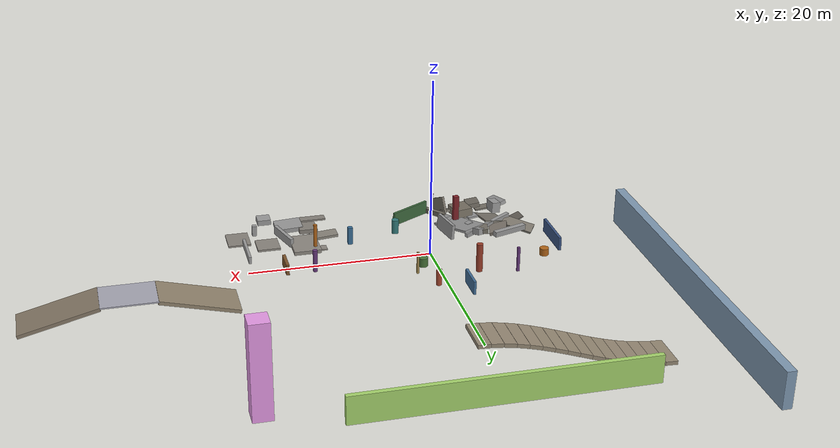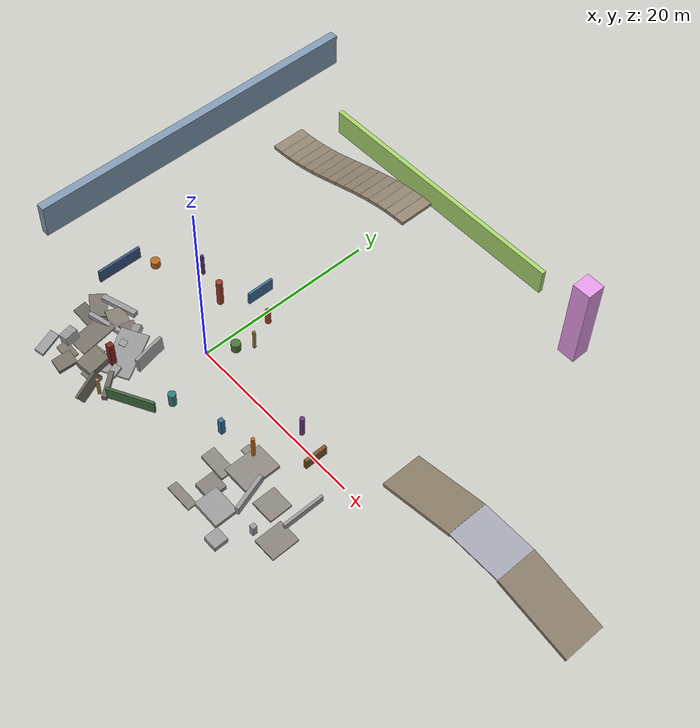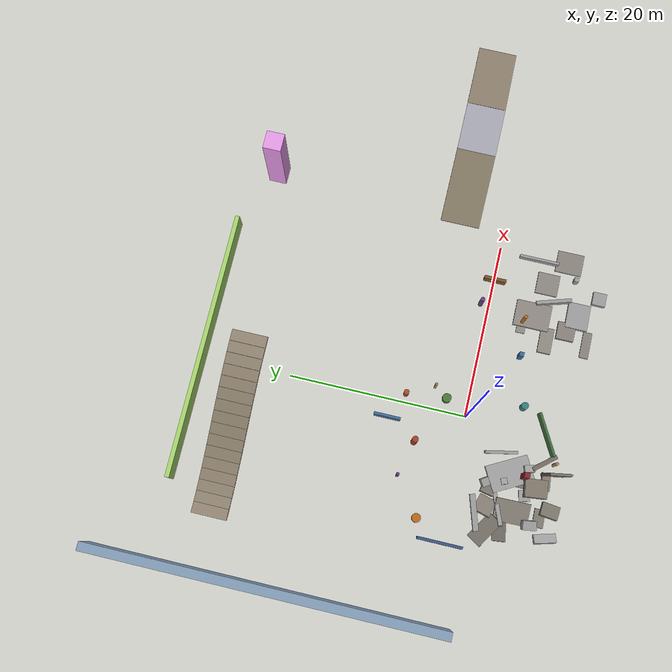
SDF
<sdf version="1.5">
 <world name="complex_terrain_v6">
  <model name="ruins_zone">
   <static>true</static>
   <link name="ruins_link">
    <visual name="r01_v">
     <pose>-5.0 -6.0 0.18 0.15 0.0 0.5</pose>
     <geometry><box><size>3.0 5.0 0.28</size></box></geometry>
     <material>
      <script><uri>file://media/materials/scripts/gazebo.material</uri><name>Gazebo/Grey</name></script>
      <ambient>0.50 0.48 0.45 1</ambient>
     </material>
    </visual>
    <collision name="r01_c">
     <pose>-5.0 -6.0 0.18 0.15 0.0 0.5</pose>
     <geometry><box><size>3.0 5.0 0.28</size></box></geometry>
    </collision>
    <visual name="r02_v">
     <pose>-3.0 -4.5 0.85 0.0 -0.08 0.2</pose>
     <geometry><box><size>0.35 3.5 1.70</size></box></geometry>
     <material>
      <script><uri>file://media/materials/scripts/gazebo.material</uri><name>Gazebo/Grey</name></script>
      <ambient>0.45 0.43 0.42 1</ambient>
     </material>
    </visual>
    <collision name="r02_c">
     <pose>-3.0 -4.5 0.85 0.0 -0.08 0.2</pose>
     <geometry><box><size>0.35 3.5 1.70</size></box></geometry>
    </collision>
    <visual name="r03_v">
     <pose>-8.0 -5.0 0.25 0.0 0.18 0.35</pose>
     <geometry><box><size>6.0 0.45 0.50</size></box></geometry>
     <material>
      <script><uri>file://media/materials/scripts/gazebo.material</uri><name>Gazebo/Grey</name></script>
      <ambient>0.42 0.40 0.38 1</ambient>
     </material>
    </visual>
    <collision name="r03_c">
     <pose>-8.0 -5.0 0.25 0.0 0.18 0.35</pose>
     <geometry><box><size>6.0 0.45 0.50</size></box></geometry>
    </collision>
    <visual name="r04_v">
     <pose>-6.0 -9.0 0.48 0.08 0.05 0.12</pose>
     <geometry><box><size>2.0 2.5 0.95</size></box></geometry>
     <material>
      <script><uri>file://media/materials/scripts/gazebo.material</uri><name>Gazebo/Grey</name></script>
      <ambient>0.48 0.45 0.40 1</ambient>
     </material>
    </visual>
    <collision name="r04_c">
     <pose>-6.0 -9.0 0.48 0.08 0.05 0.12</pose>
     <geometry><box><size>2.0 2.5 0.95</size></box></geometry>
    </collision>
    <visual name="r05_v">
     <pose>-4.0 -8.0 0.20 0.20 0.10 0.30</pose>
     <geometry><box><size>0.80 1.20 0.40</size></box></geometry>
     <material>
      <script><uri>file://media/materials/scripts/gazebo.material</uri><name>Gazebo/Grey</name></script>
      <ambient>0.44 0.42 0.40 1</ambient>
     </material>
    </visual>
    <collision name="r05_c">
     <pose>-4.0 -8.0 0.20 0.20 0.10 0.30</pose>
     <geometry><box><size>0.80 1.20 0.40</size></box></geometry>
    </collision>
    <visual name="r06_v">
     <pose>-9.0 -7.0 0.09 0.20 -0.15 0.0</pose>
     <geometry><box><size>2.5 4.0 0.18</size></box></geometry>
     <material>
      <script><uri>file://media/materials/scripts/gazebo.material</uri><name>Gazebo/Grey</name></script>
      <ambient>0.50 0.48 0.44 1</ambient>
     </material>
    </visual>
    <collision name="r06_c">
     <pose>-9.0 -7.0 0.09 0.20 -0.15 0.0</pose>
     <geometry><box><size>2.5 4.0 0.18</size></box></geometry>
    </collision>
    <visual name="r07_v">
     <pose>-7.0 -4.0 0.28 0.0 0.10 -0.20</pose>
     <geometry><box><size>1.5 1.5 0.55</size></box></geometry>
     <material>
      <script><uri>file://media/materials/scripts/gazebo.material</uri><name>Gazebo/Grey</name></script>
      <ambient>0.46 0.44 0.40 1</ambient>
     </material>
    </visual>
    <collision name="r07_c">
     <pose>-7.0 -4.0 0.28 0.0 0.10 -0.20</pose>
     <geometry><box><size>1.5 1.5 0.55</size></box></geometry>
    </collision>
    <visual name="r08_v">
     <pose>-10.0 -9.0 0.60 0.05 -0.10 0.15</pose>
     <geometry><box><size>1.0 1.5 1.20</size></box></geometry>
     <material>
      <script><uri>file://media/materials/scripts/gazebo.material</uri><name>Gazebo/Grey</name></script>
      <ambient>0.43 0.41 0.38 1</ambient>
     </material>
    </visual>
    <collision name="r08_c">
     <pose>-10.0 -9.0 0.60 0.05 -0.10 0.15</pose>
     <geometry><box><size>1.0 1.5 1.20</size></box></geometry>
    </collision>
    <visual name="r09_v">
     <pose>-5.0 -10.0 0.14 0.30 0.0 0.10</pose>
     <geometry><box><size>2.0 1.0 0.28</size></box></geometry>
     <material>
      <script><uri>file://media/materials/scripts/gazebo.material</uri><name>Gazebo/Grey</name></script>
      <ambient>0.48 0.46 0.42 1</ambient>
     </material>
    </visual>
    <collision name="r09_c">
     <pose>-5.0 -10.0 0.14 0.30 0.0 0.10</pose>
     <geometry><box><size>2.0 1.0 0.28</size></box></geometry>
    </collision>
    <visual name="r10_v">
     <pose>-11.0 -6.0 0.05 0.0 0.35 0.10</pose>
     <geometry><box><size>3.0 1.5 0.10</size></box></geometry>
     <material>
      <script><uri>file://media/materials/scripts/gazebo.material</uri><name>Gazebo/Grey</name></script>
      <ambient>0.40 0.38 0.35 1</ambient>
     </material>
    </visual>
    <collision name="r10_c">
     <pose>-11.0 -6.0 0.05 0.0 0.35 0.10</pose>
     <geometry><box><size>3.0 1.5 0.10</size></box></geometry>
    </collision>
    <visual name="r11_v">
     <pose>-8.0 -11.0 0.25 0.10 0.15 -0.10</pose>
     <geometry><box><size>1.5 2.0 0.50</size></box></geometry>
     <material>
      <script><uri>file://media/materials/scripts/gazebo.material</uri><name>Gazebo/Grey</name></script>
      <ambient>0.46 0.44 0.40 1</ambient>
     </material>
    </visual>
    <collision name="r11_c">
     <pose>-8.0 -11.0 0.25 0.10 0.15 -0.10</pose>
     <geometry><box><size>1.5 2.0 0.50</size></box></geometry>
    </collision>
    <visual name="r12_v">
     <pose>-4.0 -11.0 0.40 0.45 0.0 0.20</pose>
     <geometry><box><size>0.28 3.0 1.80</size></box></geometry>
     <material>
      <script><uri>file://media/materials/scripts/gazebo.material</uri><name>Gazebo/Grey</name></script>
      <ambient>0.44 0.42 0.38 1</ambient>
     </material>
    </visual>
    <collision name="r12_c">
     <pose>-4.0 -11.0 0.40 0.45 0.0 0.20</pose>
     <geometry><box><size>0.28 3.0 1.80</size></box></geometry>
    </collision>
    <visual name="r13_v">
     <pose>-6.0 -5.5 0.28 0.10 0.20 0.40</pose>
     <geometry><box><size>0.70 0.70 0.55</size></box></geometry>
     <material>
      <script><uri>file://media/materials/scripts/gazebo.material</uri><name>Gazebo/Grey</name></script>
      <ambient>0.42 0.41 0.38 1</ambient>
     </material>
    </visual>
    <collision name="r13_c">
     <pose>-6.0 -5.5 0.28 0.10 0.20 0.40</pose>
     <geometry><box><size>0.70 0.70 0.55</size></box></geometry>
    </collision>
    <visual name="r14_v">
     <pose>-9.0 -4.0 0.18 -0.10 0.28 -0.30</pose>
     <geometry><box><size>2.0 2.0 0.35</size></box></geometry>
     <material>
      <script><uri>file://media/materials/scripts/gazebo.material</uri><name>Gazebo/Grey</name></script>
      <ambient>0.50 0.47 0.43 1</ambient>
     </material>
    </visual>
    <collision name="r14_c">
     <pose>-9.0 -4.0 0.18 -0.10 0.28 -0.30</pose>
     <geometry><box><size>2.0 2.0 0.35</size></box></geometry>
    </collision>
    <visual name="r15_v">
     <pose>-5.5 -7.0 0.07 0.0 0.0 0.0</pose>
     <geometry><box><size>1.5 1.5 0.14</size></box></geometry>
     <material>
      <script><uri>file://media/materials/scripts/gazebo.material</uri><name>Gazebo/Grey</name></script>
      <ambient>0.46 0.44 0.40 1</ambient>
     </material>
    </visual>
    <collision name="r15_c">
     <pose>-5.5 -7.0 0.07 0.0 0.0 0.0</pose>
     <geometry><box><size>1.5 1.5 0.14</size></box></geometry>
    </collision>
    <visual name="r16_v">
     <pose>-7.0 -8.0 0.11 0.05 0.05 0.2</pose>
     <geometry><box><size>1.2 1.2 0.22</size></box></geometry>
     <material>
      <script><uri>file://media/materials/scripts/gazebo.material</uri><name>Gazebo/Grey</name></script>
      <ambient>0.45 0.43 0.40 1</ambient>
     </material>
    </visual>
    <collision name="r16_c">
     <pose>-7.0 -8.0 0.11 0.05 0.05 0.2</pose>
     <geometry><box><size>1.2 1.2 0.22</size></box></geometry>
    </collision>
    <visual name="r17_v">
     <pose>-9.0 -10.0 0.09 0.05 0.10 0.0</pose>
     <geometry><box><size>2.0 1.2 0.18</size></box></geometry>
     <material>
      <script><uri>file://media/materials/scripts/gazebo.material</uri><name>Gazebo/Grey</name></script>
      <ambient>0.47 0.45 0.41 1</ambient>
     </material>
    </visual>
    <collision name="r17_c">
     <pose>-9.0 -10.0 0.09 0.05 0.10 0.0</pose>
     <geometry><box><size>2.0 1.2 0.18</size></box></geometry>
    </collision>
    <visual name="r18_v">
     <pose>-11.0 -11.0 0.22 0.15 0.20 0.30</pose>
     <geometry><box><size>1.0 2.5 0.44</size></box></geometry>
     <material>
      <script><uri>file://media/materials/scripts/gazebo.material</uri><name>Gazebo/Grey</name></script>
      <ambient>0.44 0.42 0.39 1</ambient>
     </material>
    </visual>
    <collision name="r18_c">
     <pose>-11.0 -11.0 0.22 0.15 0.20 0.30</pose>
     <geometry><box><size>1.0 2.5 0.44</size></box></geometry>
    </collision>
    <visual name="r19_v">
     <pose>-3.0 -9.5 0.28 0.0 0.0 0.70</pose>
     <geometry><box><size>0.50 3.0 0.55</size></box></geometry>
     <material>
      <script><uri>file://media/materials/scripts/gazebo.material</uri><name>Gazebo/Grey</name></script>
      <ambient>0.43 0.41 0.37 1</ambient>
     </material>
    </visual>
    <collision name="r19_c">
     <pose>-3.0 -9.5 0.28 0.0 0.0 0.70</pose>
     <geometry><box><size>0.50 3.0 0.55</size></box></geometry>
    </collision>
    <visual name="r20_v">
     <pose>-10.0 -3.0 0.30 0.0 1.5708 0.30</pose>
     <geometry><box><size>0.60 0.60 4.0</size></box></geometry>
     <material>
      <script><uri>file://media/materials/scripts/gazebo.material</uri><name>Gazebo/Grey</name></script>
      <ambient>0.42 0.40 0.38 1</ambient>
     </material>
    </visual>
    <collision name="r20_c">
     <pose>-10.0 -3.0 0.30 0.0 1.5708 0.30</pose>
     <geometry><box><size>0.60 0.60 4.0</size></box></geometry>
    </collision>
    <visual name="r21_v">
     <pose>-6.5 -3.5 0.35 0.12 -0.18 0.55</pose>
     <geometry><box><size>0.90 0.90 0.70</size></box></geometry>
     <material>
      <script><uri>file://media/materials/scripts/gazebo.material</uri><name>Gazebo/Grey</name></script>
      <ambient>0.45 0.43 0.40 1</ambient>
     </material>
    </visual>
    <collision name="r21_c">
     <pose>-6.5 -3.5 0.35 0.12 -0.18 0.55</pose>
     <geometry><box><size>0.90 0.90 0.70</size></box></geometry>
    </collision>
    <visual name="r22_v">
     <pose>-11.5 -4.5 0.12 -0.20 0.10 1.0</pose>
     <geometry><box><size>1.80 3.50 0.22</size></box></geometry>
     <material>
      <script><uri>file://media/materials/scripts/gazebo.material</uri><name>Gazebo/Grey</name></script>
      <ambient>0.48 0.46 0.42 1</ambient>
     </material>
    </visual>
    <collision name="r22_c">
     <pose>-11.5 -4.5 0.12 -0.20 0.10 1.0</pose>
     <geometry><box><size>1.80 3.50 0.22</size></box></geometry>
    </collision>
   </link>
  </model>
  <model name="easy_ruins_zone">
   <static>true</static>
   <link name="easy_link">
    <visual name="e01_v">
     <pose>13.0 -5.0 0.20 0 0 0</pose>
     <geometry><box><size>3.0 4.0 0.40</size></box></geometry>
     <material>
      <script><uri>file://media/materials/scripts/gazebo.material</uri><name>Gazebo/Grey</name></script>
      <ambient>0.55 0.53 0.50 1</ambient>
     </material>
    </visual>
    <collision name="e01_c">
     <pose>13.0 -5.0 0.20 0 0 0</pose>
     <geometry><box><size>3.0 4.0 0.40</size></box></geometry>
    </collision>
    <visual name="e02_v">
     <pose>15.0 -7.0 0.50 0 0 0.30</pose>
     <geometry><box><size>0.40 4.0 1.00</size></box></geometry>
     <material>
      <script><uri>file://media/materials/scripts/gazebo.material</uri><name>Gazebo/Grey</name></script>
      <ambient>0.50 0.48 0.46 1</ambient>
     </material>
    </visual>
    <collision name="e02_c">
     <pose>15.0 -7.0 0.50 0 0 0.30</pose>
     <geometry><box><size>0.40 4.0 1.00</size></box></geometry>
    </collision>
    <visual name="e03_v">
     <pose>12.0 -9.0 0.25 0 0 0</pose>
     <geometry><box><size>2.0 2.0 0.50</size></box></geometry>
     <material>
      <script><uri>file://media/materials/scripts/gazebo.material</uri><name>Gazebo/Grey</name></script>
      <ambient>0.52 0.50 0.47 1</ambient>
     </material>
    </visual>
    <collision name="e03_c">
     <pose>12.0 -9.0 0.25 0 0 0</pose>
     <geometry><box><size>2.0 2.0 0.50</size></box></geometry>
    </collision>
    <visual name="e04_v">
     <pose>17.0 -6.0 0.12 0 0 0</pose>
     <geometry><box><size>2.5 2.5 0.24</size></box></geometry>
     <material>
      <script><uri>file://media/materials/scripts/gazebo.material</uri><name>Gazebo/Grey</name></script>
      <ambient>0.54 0.52 0.49 1</ambient>
     </material>
    </visual>
    <collision name="e04_c">
     <pose>17.0 -6.0 0.12 0 0 0</pose>
     <geometry><box><size>2.5 2.5 0.24</size></box></geometry>
    </collision>
    <visual name="e05_v">
     <pose>14.0 -10.0 0.25 0 0.05 0</pose>
     <geometry><box><size>3.0 2.5 0.50</size></box></geometry>
     <material>
      <script><uri>file://media/materials/scripts/gazebo.material</uri><name>Gazebo/Grey</name></script>
      <ambient>0.50 0.49 0.46 1</ambient>
     </material>
    </visual>
    <collision name="e05_c">
     <pose>14.0 -10.0 0.25 0 0.05 0</pose>
     <geometry><box><size>3.0 2.5 0.50</size></box></geometry>
    </collision>
    <visual name="e06_v">
     <pose>11.0 -11.5 0.10 0 0 0</pose>
     <geometry><box><size>3.0 1.0 0.20</size></box></geometry>
     <material>
      <script><uri>file://media/materials/scripts/gazebo.material</uri><name>Gazebo/Grey</name></script>
      <ambient>0.52 0.50 0.47 1</ambient>
     </material>
    </visual>
    <collision name="e06_c">
     <pose>11.0 -11.5 0.10 0 0 0</pose>
     <geometry><box><size>3.0 1.0 0.20</size></box></geometry>
    </collision>
    <visual name="e07_v">
     <pose>18.0 -9.0 0.60 0 0 0</pose>
     <geometry><box><size>0.50 0.50 1.20</size></box></geometry>
     <material>
      <script><uri>file://media/materials/scripts/gazebo.material</uri><name>Gazebo/Grey</name></script>
      <ambient>0.48 0.46 0.43 1</ambient>
     </material>
    </visual>
    <collision name="e07_c">
     <pose>18.0 -9.0 0.60 0 0 0</pose>
     <geometry><box><size>0.50 0.50 1.20</size></box></geometry>
    </collision>
    <visual name="e08_v">
     <pose>10.5 -7.0 0.15 0 0.08 0</pose>
     <geometry><box><size>3.0 1.5 0.30</size></box></geometry>
     <material>
      <script><uri>file://media/materials/scripts/gazebo.material</uri><name>Gazebo/Grey</name></script>
      <ambient>0.54 0.52 0.48 1</ambient>
     </material>
    </visual>
    <collision name="e08_c">
     <pose>10.5 -7.0 0.15 0 0.08 0</pose>
     <geometry><box><size>3.0 1.5 0.30</size></box></geometry>
    </collision>
    <visual name="e09_v">
     <pose>20.0 -8.0 0.10 0 0 0</pose>
     <geometry><box><size>2.5 3.0 0.20</size></box></geometry>
     <material>
      <script><uri>file://media/materials/scripts/gazebo.material</uri><name>Gazebo/Grey</name></script>
      <ambient>0.53 0.51 0.48 1</ambient>
     </material>
    </visual>
    <collision name="e09_c">
     <pose>20.0 -8.0 0.10 0 0 0</pose>
     <geometry><box><size>2.5 3.0 0.20</size></box></geometry>
    </collision>
    <visual name="e10_v">
     <pose>19.5 -4.5 0.40 0 0 0</pose>
     <geometry><box><size>0.30 4.5 0.80</size></box></geometry>
     <material>
      <script><uri>file://media/materials/scripts/gazebo.material</uri><name>Gazebo/Grey</name></script>
      <ambient>0.50 0.48 0.45 1</ambient>
     </material>
    </visual>
    <collision name="e10_c">
     <pose>19.5 -4.5 0.40 0 0 0</pose>
     <geometry><box><size>0.30 4.5 0.80</size></box></geometry>
    </collision>
    <visual name="e11_v">
     <pose>16.5 -12.0 0.30 0 0 0</pose>
     <geometry><box><size>1.5 1.5 0.60</size></box></geometry>
     <material>
      <script><uri>file://media/materials/scripts/gazebo.material</uri><name>Gazebo/Grey</name></script>
      <ambient>0.51 0.49 0.46 1</ambient>
     </material>
    </visual>
    <collision name="e11_c">
     <pose>16.5 -12.0 0.30 0 0 0</pose>
     <geometry><box><size>1.5 1.5 0.60</size></box></geometry>
    </collision>
    <visual name="e12_v">
     <pose>12.0 -4.0 0.08 0 0 0</pose>
     <geometry><box><size>2.5 1.0 0.16</size></box></geometry>
     <material>
      <script><uri>file://media/materials/scripts/gazebo.material</uri><name>Gazebo/Grey</name></script>
      <ambient>0.55 0.53 0.50 1</ambient>
     </material>
    </visual>
    <collision name="e12_c">
     <pose>12.0 -4.0 0.08 0 0 0</pose>
     <geometry><box><size>2.5 1.0 0.16</size></box></geometry>
    </collision>
   </link>
  </model>
  <model name="scattered_features">
   <static>true</static>
   <link name="feat_link">
    <visual name="f01_v">
     <pose>1.0 7.0 0.90 0 0 0</pose>
     <geometry><cylinder><radius>0.30</radius><length>1.80</length></cylinder></geometry>
     <material>
      <script><uri>file://media/materials/scripts/gazebo.material</uri><name>Gazebo/Grey</name></script>
      <ambient>0.65 0.28 0.18 1</ambient>
     </material>
    </visual>
    <collision name="f01_c">
     <pose>1.0 7.0 0.90 0 0 0</pose>
     <geometry><cylinder><radius>0.30</radius><length>1.80</length></cylinder></geometry>
    </collision>
    <visual name="f02_v">
     <pose>-2.0 8.5 0.75 0 0 0</pose>
     <geometry><box><size>0.28 3.0 1.50</size></box></geometry>
     <material>
      <script><uri>file://media/materials/scripts/gazebo.material</uri><name>Gazebo/Grey</name></script>
      <ambient>0.25 0.42 0.58 1</ambient>
     </material>
    </visual>
    <collision name="f02_c">
     <pose>-2.0 8.5 0.75 0 0 0</pose>
     <geometry><box><size>0.28 3.0 1.50</size></box></geometry>
    </collision>
    <visual name="f03_v">
     <pose>2.5 4.0 1.25 0 0 0</pose>
     <geometry><box><size>0.25 0.25 2.50</size></box></geometry>
     <material>
      <script><uri>file://media/materials/scripts/gazebo.material</uri><name>Gazebo/Grey</name></script>
      <ambient>0.62 0.52 0.30 1</ambient>
     </material>
    </visual>
    <collision name="f03_c">
     <pose>2.5 4.0 1.25 0 0 0</pose>
     <geometry><box><size>0.25 0.25 2.50</size></box></geometry>
    </collision>
    <visual name="f04_v">
     <pose>1.5 2.5 0.50 0 0 0</pose>
     <geometry><cylinder><radius>0.50</radius><length>1.00</length></cylinder></geometry>
     <material>
      <script><uri>file://media/materials/scripts/gazebo.material</uri><name>Gazebo/Grey</name></script>
      <ambient>0.28 0.45 0.22 1</ambient>
     </material>
    </visual>
    <collision name="f04_c">
     <pose>1.5 2.5 0.50 0 0 0</pose>
     <geometry><cylinder><radius>0.50</radius><length>1.00</length></cylinder></geometry>
    </collision>
    <visual name="f05_v">
     <pose>13.0 1.0 1.25 0 0 0</pose>
     <geometry><cylinder><radius>0.25</radius><length>2.50</length></cylinder></geometry>
     <material>
      <script><uri>file://media/materials/scripts/gazebo.material</uri><name>Gazebo/Grey</name></script>
      <ambient>0.40 0.22 0.48 1</ambient>
     </material>
    </visual>
    <collision name="f05_c">
     <pose>13.0 1.0 1.25 0 0 0</pose>
     <geometry><cylinder><radius>0.25</radius><length>2.50</length></cylinder></geometry>
    </collision>
    <visual name="f06_v">
     <pose>16.0 0.0 0.60 0 0 0</pose>
     <geometry><box><size>0.35 2.5 1.20</size></box></geometry>
     <material>
      <script><uri>file://media/materials/scripts/gazebo.material</uri><name>Gazebo/Grey</name></script>
      <ambient>0.48 0.32 0.16 1</ambient>
     </material>
    </visual>
    <collision name="f06_c">
     <pose>16.0 0.0 0.60 0 0 0</pose>
     <geometry><box><size>0.35 2.5 1.20</size></box></geometry>
    </collision>
    <visual name="f07_v">
     <pose>8.0 -4.5 1.00 0 0 0</pose>
     <geometry><box><size>0.50 0.50 2.00</size></box></geometry>
     <material>
      <script><uri>file://media/materials/scripts/gazebo.material</uri><name>Gazebo/Grey</name></script>
      <ambient>0.22 0.42 0.58 1</ambient>
     </material>
    </visual>
    <collision name="f07_c">
     <pose>8.0 -4.5 1.00 0 0 0</pose>
     <geometry><box><size>0.50 0.50 2.00</size></box></geometry>
    </collision>
    <visual name="f08_v">
     <pose>12.0 -4.0 1.50 0 0 0</pose>
     <geometry><cylinder><radius>0.20</radius><length>3.00</length></cylinder></geometry>
     <material>
      <script><uri>file://media/materials/scripts/gazebo.material</uri><name>Gazebo/Grey</name></script>
      <ambient>0.70 0.40 0.10 1</ambient>
     </material>
    </visual>
    <collision name="f08_c">
     <pose>12.0 -4.0 1.50 0 0 0</pose>
     <geometry><cylinder><radius>0.20</radius><length>3.00</length></cylinder></geometry>
    </collision>
    <visual name="f09_v">
     <pose>0.0 -9.0 0.75 0 0 0.5</pose>
     <geometry><box><size>5.0 0.28 1.50</size></box></geometry>
     <material>
      <script><uri>file://media/materials/scripts/gazebo.material</uri><name>Gazebo/Grey</name></script>
      <ambient>0.25 0.42 0.25 1</ambient>
     </material>
    </visual>
    <collision name="f09_c">
     <pose>0.0 -9.0 0.75 0 0 0.5</pose>
     <geometry><box><size>5.0 0.28 1.50</size></box></geometry>
    </collision>
    <visual name="f10_v">
     <pose>2.5 -6.0 0.80 0 0 0</pose>
     <geometry><cylinder><radius>0.40</radius><length>1.60</length></cylinder></geometry>
     <material>
      <script><uri>file://media/materials/scripts/gazebo.material</uri><name>Gazebo/Grey</name></script>
      <ambient>0.20 0.48 0.48 1</ambient>
     </material>
    </visual>
    <collision name="f10_c">
     <pose>2.5 -6.0 0.80 0 0 0</pose>
     <geometry><cylinder><radius>0.40</radius><length>1.60</length></cylinder></geometry>
    </collision>
    <visual name="f11_v">
     <pose>-5.0 -7.5 1.50 0 0 0</pose>
     <geometry><box><size>0.60 0.60 3.00</size></box></geometry>
     <material>
      <script><uri>file://media/materials/scripts/gazebo.material</uri><name>Gazebo/Grey</name></script>
      <ambient>0.50 0.14 0.16 1</ambient>
     </material>
    </visual>
    <collision name="f11_c">
     <pose>-5.0 -7.5 1.50 0 0 0</pose>
     <geometry><box><size>0.60 0.60 3.00</size></box></geometry>
    </collision>
    <visual name="f12_v">
     <pose>-3.0 -10.5 1.10 0 0 0</pose>
     <geometry><cylinder><radius>0.18</radius><length>2.20</length></cylinder></geometry>
     <material>
      <script><uri>file://media/materials/scripts/gazebo.material</uri><name>Gazebo/Grey</name></script>
      <ambient>0.62 0.48 0.28 1</ambient>
     </material>
    </visual>
    <collision name="f12_c">
     <pose>-3.0 -10.5 1.10 0 0 0</pose>
     <geometry><cylinder><radius>0.18</radius><length>2.20</length></cylinder></geometry>
    </collision>
    <visual name="f13_v">
     <pose>-14.0 0.0 0.75 0 0 0</pose>
     <geometry><box><size>0.30 5.0 1.50</size></box></geometry>
     <material>
      <script><uri>file://media/materials/scripts/gazebo.material</uri><name>Gazebo/Grey</name></script>
      <ambient>0.22 0.32 0.50 1</ambient>
     </material>
    </visual>
    <collision name="f13_c">
     <pose>-14.0 0.0 0.75 0 0 0</pose>
     <geometry><box><size>0.30 5.0 1.50</size></box></geometry>
    </collision>
    <visual name="f14_v">
     <pose>-12.0 3.0 0.40 0 0 0</pose>
     <geometry><cylinder><radius>0.50</radius><length>0.80</length></cylinder></geometry>
     <material>
      <script><uri>file://media/materials/scripts/gazebo.material</uri><name>Gazebo/Grey</name></script>
      <ambient>0.70 0.40 0.10 1</ambient>
     </material>
    </visual>
    <collision name="f14_c">
     <pose>-12.0 3.0 0.40 0 0 0</pose>
     <geometry><cylinder><radius>0.50</radius><length>0.80</length></cylinder></geometry>
    </collision>
    <visual name="f15_v">
     <pose>-8.0 6.0 1.40 0 0 0</pose>
     <geometry><box><size>0.28 0.28 2.80</size></box></geometry>
     <material>
      <script><uri>file://media/materials/scripts/gazebo.material</uri><name>Gazebo/Grey</name></script>
      <ambient>0.40 0.22 0.48 1</ambient>
     </material>
    </visual>
    <collision name="f15_c">
     <pose>-8.0 6.0 1.40 0 0 0</pose>
     <geometry><box><size>0.28 0.28 2.80</size></box></geometry>
    </collision>
    <visual name="f16_v">
     <pose>-4.0 5.0 1.60 0 0 0</pose>
     <geometry><cylinder><radius>0.35</radius><length>3.20</length></cylinder></geometry>
     <material>
      <script><uri>file://media/materials/scripts/gazebo.material</uri><name>Gazebo/Grey</name></script>
      <ambient>0.60 0.24 0.16 1</ambient>
     </material>
    </visual>
    <collision name="f16_c">
     <pose>-4.0 5.0 1.60 0 0 0</pose>
     <geometry><cylinder><radius>0.35</radius><length>3.20</length></cylinder></geometry>
    </collision>
   </link>
  </model>
  <model name="ramp_zone">
   <static>true</static>
   <link name="ramp_link">
    <visual name="ramp_up_v">
     <pose>26 5.25 0.80 0 -0.245 0</pose>
     <geometry><box><size>8.5 4.5 0.40</size></box></geometry>
     <material>
      <ambient>0.52 0.47 0.38 1</ambient>
      <diffuse>0.56 0.51 0.42 1</diffuse>
      <specular>0.05 0.05 0.05 1</specular>
     </material>
    </visual>
    <collision name="ramp_up_c">
     <pose>26 5.25 0.80 0 -0.245 0</pose>
     <geometry><box><size>8.5 4.5 0.40</size></box></geometry>
    </collision>
    <visual name="ramp_top_v">
     <pose>33 5.25 1.925 0 0 0</pose>
     <geometry><box><size>6.0 4.5 0.15</size></box></geometry>
     <material>
      <ambient>0.62 0.62 0.68 1</ambient>
      <diffuse>0.65 0.65 0.70 1</diffuse>
      <specular>0.05 0.05 0.05 1</specular>
     </material>
    </visual>
    <collision name="ramp_top_c">
     <pose>33 5.25 1.925 0 0 0</pose>
     <geometry><box><size>6.0 4.5 0.15</size></box></geometry>
    </collision>
    <visual name="ramp_down_v">
     <pose>40 5.25 0.80 0 0.245 0</pose>
     <geometry><box><size>8.5 4.5 0.40</size></box></geometry>
     <material>
      <ambient>0.48 0.43 0.36 1</ambient>
      <diffuse>0.52 0.47 0.40 1</diffuse>
      <specular>0.05 0.05 0.05 1</specular>
     </material>
    </visual>
    <collision name="ramp_down_c">
     <pose>40 5.25 0.80 0 0.245 0</pose>
     <geometry><box><size>8.5 4.5 0.40</size></box></geometry>
    </collision>
   </link>
  </model>
  <model name="box_1">
   <static>true</static>
   <link name="link">
    <collision name="col">
     <geometry><box><size>2.0 2.0 10.0</size></box></geometry>
     <surface><friction><ode><mu>200</mu><mu2>200</mu2></ode></friction></surface>
    </collision>
    <visual name="vis">
     <geometry><box><size>2.0 2.0 10.0</size></box></geometry>
     <material><ambient>0.9 0.6 0.9 1</ambient><diffuse>0.9 0.6 0.9 1</diffuse></material>
    </visual>
   </link>
   <pose>23 27 5.0 0 0 0</pose>
  </model>
  <model name="wall_1">
   <static>true</static>
   <link name="link">
    <collision name="col">
     <geometry><box><size>1.0 40.0 4.0</size></box></geometry>
     <surface><friction><ode><mu>200</mu><mu2>200</mu2></ode></friction></surface>
    </collision>
    <visual name="vis">
     <geometry><box><size>1.0 40.0 4.0</size></box></geometry>
     <material><ambient>0.5 0.6 0.7 1</ambient><diffuse>0.5 0.6 0.7 1</diffuse></material>
    </visual>
   </link>
   <pose>-23 17 2.0 0 0 0</pose>
  </model>
  <model name="wall4">
   <static>true</static>
   <link name="link">
    <collision name="col">
     <geometry><box><size>30.0 0.5 3.0</size></box></geometry>
     <surface><friction><ode><mu>200</mu><mu2>200</mu2></ode></friction></surface>
    </collision>
    <visual name="vis">
     <geometry><box><size>30.0 0.5 3.0</size></box></geometry>
     <material><ambient>0.65 0.83 0.42 1</ambient><diffuse>0.65 0.83 0.42 1</diffuse></material>
    </visual>
   </link>
   <pose>1 30 1.5 0 0 0</pose>
  </model>
  <model name="curved_ramp_3f">
   <static>true</static>
   <link name="ramp_link">
    <visual name="cr_00_v">
     <pose>-16.375 25.0 -0.178 0 -0.0346 0</pose>
     <geometry><box><size>1.251 4.0 0.4</size></box></geometry>
     <material>
      <ambient>0.55 0.50 0.42 1</ambient>
      <diffuse>0.58 0.53 0.45 1</diffuse>
      <specular>0.05 0.05 0.05 1</specular>
     </material>
    </visual>
    <collision name="cr_00_c">
     <pose>-16.375 25.0 -0.178 0 -0.0346 0</pose>
     <geometry><box><size>1.251 4.0 0.4</size></box></geometry>
    </collision>
    <visual name="cr_01_v">
     <pose>-15.125 25.0 -0.092 0 -0.1021 0</pose>
     <geometry><box><size>1.257 4.0 0.4</size></box></geometry>
     <material>
      <ambient>0.55 0.50 0.42 1</ambient>
      <diffuse>0.58 0.53 0.45 1</diffuse>
      <specular>0.05 0.05 0.05 1</specular>
     </material>
    </visual>
    <collision name="cr_01_c">
     <pose>-15.125 25.0 -0.092 0 -0.1021 0</pose>
     <geometry><box><size>1.257 4.0 0.4</size></box></geometry>
    </collision>
    <visual name="cr_02_v">
     <pose>-13.875 25.0 0.078 0 -0.1648 0</pose>
     <geometry><box><size>1.267 4.0 0.4</size></box></geometry>
     <material>
      <ambient>0.55 0.50 0.42 1</ambient>
      <diffuse>0.58 0.53 0.45 1</diffuse>
      <specular>0.05 0.05 0.05 1</specular>
     </material>
    </visual>
    <collision name="cr_02_c">
     <pose>-13.875 25.0 0.078 0 -0.1648 0</pose>
     <geometry><box><size>1.267 4.0 0.4</size></box></geometry>
    </collision>
    <visual name="cr_03_v">
     <pose>-12.625 25.0 0.324 0 -0.2202 0</pose>
     <geometry><box><size>1.281 4.0 0.4</size></box></geometry>
     <material>
      <ambient>0.55 0.50 0.42 1</ambient>
      <diffuse>0.58 0.53 0.45 1</diffuse>
      <specular>0.05 0.05 0.05 1</specular>
     </material>
    </visual>
    <collision name="cr_03_c">
     <pose>-12.625 25.0 0.324 0 -0.2202 0</pose>
     <geometry><box><size>1.281 4.0 0.4</size></box></geometry>
    </collision>
    <visual name="cr_04_v">
     <pose>-11.375 25.0 0.637 0 -0.2663 0</pose>
     <geometry><box><size>1.296 4.0 0.4</size></box></geometry>
     <material>
      <ambient>0.55 0.50 0.42 1</ambient>
      <diffuse>0.58 0.53 0.45 1</diffuse>
      <specular>0.05 0.05 0.05 1</specular>
     </material>
    </visual>
    <collision name="cr_04_c">
     <pose>-11.375 25.0 0.637 0 -0.2663 0</pose>
     <geometry><box><size>1.296 4.0 0.4</size></box></geometry>
    </collision>
    <visual name="cr_05_v">
     <pose>-10.125 25.0 1.003 0 -0.3017 0</pose>
     <geometry><box><size>1.309 4.0 0.4</size></box></geometry>
     <material>
      <ambient>0.55 0.50 0.42 1</ambient>
      <diffuse>0.58 0.53 0.45 1</diffuse>
      <specular>0.05 0.05 0.05 1</specular>
     </material>
    </visual>
    <collision name="cr_05_c">
     <pose>-10.125 25.0 1.003 0 -0.3017 0</pose>
     <geometry><box><size>1.309 4.0 0.4</size></box></geometry>
    </collision>
    <visual name="cr_06_v">
     <pose>-8.875 25.0 1.411 0 -0.3256 0</pose>
     <geometry><box><size>1.319 4.0 0.4</size></box></geometry>
     <material>
      <ambient>0.55 0.50 0.42 1</ambient>
      <diffuse>0.58 0.53 0.45 1</diffuse>
      <specular>0.05 0.05 0.05 1</specular>
     </material>
    </visual>
    <collision name="cr_06_c">
     <pose>-8.875 25.0 1.411 0 -0.3256 0</pose>
     <geometry><box><size>1.319 4.0 0.4</size></box></geometry>
    </collision>
    <visual name="cr_07_v">
     <pose>-7.625 25.0 1.842 0 -0.3377 0</pose>
     <geometry><box><size>1.325 4.0 0.4</size></box></geometry>
     <material>
      <ambient>0.55 0.50 0.42 1</ambient>
      <diffuse>0.58 0.53 0.45 1</diffuse>
      <specular>0.05 0.05 0.05 1</specular>
     </material>
    </visual>
    <collision name="cr_07_c">
     <pose>-7.625 25.0 1.842 0 -0.3377 0</pose>
     <geometry><box><size>1.325 4.0 0.4</size></box></geometry>
    </collision>
    <visual name="cr_08_v">
     <pose>-6.375 25.0 2.281 0 -0.3377 0</pose>
     <geometry><box><size>1.325 4.0 0.4</size></box></geometry>
     <material>
      <ambient>0.55 0.50 0.42 1</ambient>
      <diffuse>0.58 0.53 0.45 1</diffuse>
      <specular>0.05 0.05 0.05 1</specular>
     </material>
    </visual>
    <collision name="cr_08_c">
     <pose>-6.375 25.0 2.281 0 -0.3377 0</pose>
     <geometry><box><size>1.325 4.0 0.4</size></box></geometry>
    </collision>
    <visual name="cr_09_v">
     <pose>-5.125 25.0 2.711 0 -0.3256 0</pose>
     <geometry><box><size>1.319 4.0 0.4</size></box></geometry>
     <material>
      <ambient>0.55 0.50 0.42 1</ambient>
      <diffuse>0.58 0.53 0.45 1</diffuse>
      <specular>0.05 0.05 0.05 1</specular>
     </material>
    </visual>
    <collision name="cr_09_c">
     <pose>-5.125 25.0 2.711 0 -0.3256 0</pose>
     <geometry><box><size>1.319 4.0 0.4</size></box></geometry>
    </collision>
    <visual name="cr_10_v">
     <pose>-3.875 25.0 3.115 0 -0.3017 0</pose>
     <geometry><box><size>1.309 4.0 0.4</size></box></geometry>
     <material>
      <ambient>0.55 0.50 0.42 1</ambient>
      <diffuse>0.58 0.53 0.45 1</diffuse>
      <specular>0.05 0.05 0.05 1</specular>
     </material>
    </visual>
    <collision name="cr_10_c">
     <pose>-3.875 25.0 3.115 0 -0.3017 0</pose>
     <geometry><box><size>1.309 4.0 0.4</size></box></geometry>
    </collision>
    <visual name="cr_11_v">
     <pose>-2.625 25.0 3.478 0 -0.2663 0</pose>
     <geometry><box><size>1.296 4.0 0.4</size></box></geometry>
     <material>
      <ambient>0.55 0.50 0.42 1</ambient>
      <diffuse>0.58 0.53 0.45 1</diffuse>
      <specular>0.05 0.05 0.05 1</specular>
     </material>
    </visual>
    <collision name="cr_11_c">
     <pose>-2.625 25.0 3.478 0 -0.2663 0</pose>
     <geometry><box><size>1.296 4.0 0.4</size></box></geometry>
    </collision>
    <visual name="cr_12_v">
     <pose>-1.375 25.0 3.786 0 -0.2202 0</pose>
     <geometry><box><size>1.281 4.0 0.4</size></box></geometry>
     <material>
      <ambient>0.55 0.50 0.42 1</ambient>
      <diffuse>0.58 0.53 0.45 1</diffuse>
      <specular>0.05 0.05 0.05 1</specular>
     </material>
    </visual>
    <collision name="cr_12_c">
     <pose>-1.375 25.0 3.786 0 -0.2202 0</pose>
     <geometry><box><size>1.281 4.0 0.4</size></box></geometry>
    </collision>
    <visual name="cr_13_v">
     <pose>-0.125 25.0 4.027 0 -0.1648 0</pose>
     <geometry><box><size>1.267 4.0 0.4</size></box></geometry>
     <material>
      <ambient>0.55 0.50 0.42 1</ambient>
      <diffuse>0.58 0.53 0.45 1</diffuse>
      <specular>0.05 0.05 0.05 1</specular>
     </material>
    </visual>
    <collision name="cr_13_c">
     <pose>-0.125 25.0 4.027 0 -0.1648 0</pose>
     <geometry><box><size>1.267 4.0 0.4</size></box></geometry>
    </collision>
    <visual name="cr_14_v">
     <pose>1.125 25.0 4.194 0 -0.1021 0</pose>
     <geometry><box><size>1.257 4.0 0.4</size></box></geometry>
     <material>
      <ambient>0.55 0.50 0.42 1</ambient>
      <diffuse>0.58 0.53 0.45 1</diffuse>
      <specular>0.05 0.05 0.05 1</specular>
     </material>
    </visual>
    <collision name="cr_14_c">
     <pose>1.125 25.0 4.194 0 -0.1021 0</pose>
     <geometry><box><size>1.257 4.0 0.4</size></box></geometry>
    </collision>
    <visual name="cr_15_v">
     <pose>2.375 25.0 4.279 0 -0.0346 0</pose>
     <geometry><box><size>1.251 4.0 0.4</size></box></geometry>
     <material>
      <ambient>0.55 0.50 0.42 1</ambient>
      <diffuse>0.58 0.53 0.45 1</diffuse>
      <specular>0.05 0.05 0.05 1</specular>
     </material>
    </visual>
    <collision name="cr_15_c">
     <pose>2.375 25.0 4.279 0 -0.0346 0</pose>
     <geometry><box><size>1.251 4.0 0.4</size></box></geometry>
    </collision>
   </link>
  </model>
 </world>
</sdf>
